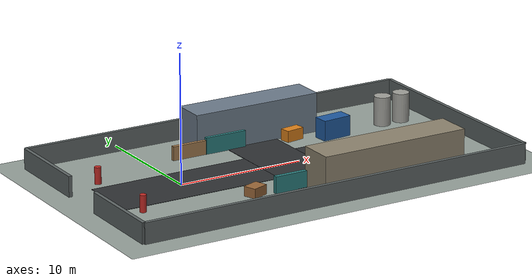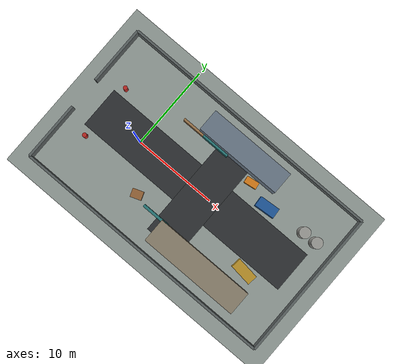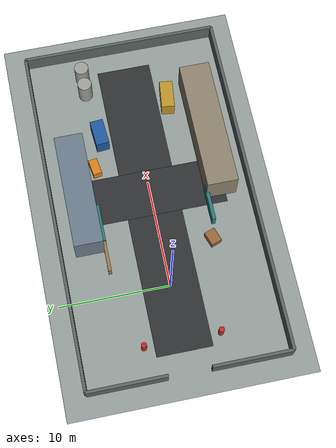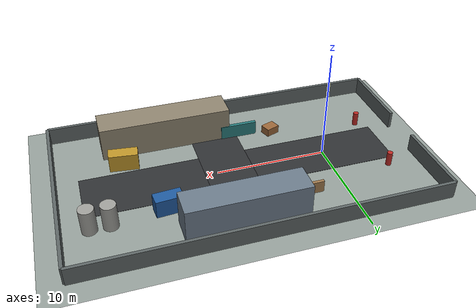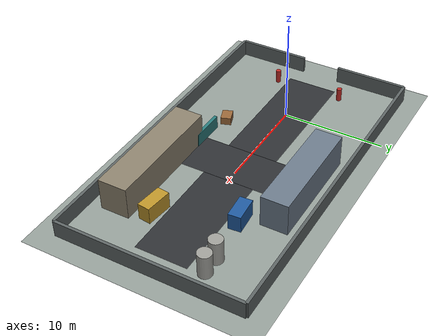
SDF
<?xml version="1.0"?>
<sdf version="1.9">
  <world name="lingtu_gazebo_industrial_park">
    <plugin filename="gz-sim-physics-system" name="gz::sim::systems::Physics"/>
    <plugin filename="gz-sim-user-commands-system" name="gz::sim::systems::UserCommands"/>
    <plugin filename="gz-sim-scene-broadcaster-system" name="gz::sim::systems::SceneBroadcaster"/>
    <plugin filename="gz-sim-sensors-system" name="gz::sim::systems::Sensors">
      <render_engine>ogre2</render_engine>
    </plugin>

    <gravity>0 0 -9.81</gravity>
    <magnetic_field>6e-06 2.3e-05 -4.2e-05</magnetic_field>
    <atmosphere type="adiabatic"/>

    <light name="sun" type="directional">
      <cast_shadows>true</cast_shadows>
      <pose>6 -4 14 0 0 0</pose>
      <diffuse>0.86 0.84 0.80 1</diffuse>
      <specular>0.25 0.25 0.25 1</specular>
      <direction>-0.35 0.25 -0.90</direction>
    </light>

    <model name="industrial_ground_plane">
      <static>true</static>
      <pose>8 0 0 0 0 0</pose>
      <link name="link">
        <collision name="collision">
          <geometry>
            <plane>
              <normal>0 0 1</normal>
              <size>36 22</size>
            </plane>
          </geometry>
          <surface>
            <friction>
              <ode>
                <mu>1.25</mu>
                <mu2>1.25</mu2>
              </ode>
            </friction>
          </surface>
        </collision>
        <visual name="visual">
          <geometry>
            <plane>
              <normal>0 0 1</normal>
              <size>36 22</size>
            </plane>
          </geometry>
          <material>
            <ambient>0.45 0.48 0.47 1</ambient>
            <diffuse>0.58 0.62 0.60 1</diffuse>
          </material>
        </visual>
      </link>
    </model>

    <model name="main_asphalt_road">
      <static>true</static>
      <pose>8 0 0.015 0 0 0</pose>
      <link name="link">
        <visual name="visual">
          <geometry><box><size>28 5.0 0.03</size></box></geometry>
          <material><ambient>0.10 0.11 0.12 1</ambient><diffuse>0.18 0.19 0.20 1</diffuse></material>
        </visual>
      </link>
    </model>

    <model name="cross_asphalt_road">
      <static>true</static>
      <pose>9 0 0.018 0 0 0</pose>
      <link name="link">
        <visual name="visual">
          <geometry><box><size>4.4 13.5 0.03</size></box></geometry>
          <material><ambient>0.10 0.11 0.12 1</ambient><diffuse>0.18 0.19 0.20 1</diffuse></material>
        </visual>
      </link>
    </model>

    <model name="perimeter_fence_north">
      <static>true</static>
      <pose>8 9 0.8 0 0 0</pose>
      <link name="link">
        <collision name="collision"><geometry><box><size>32 0.28 1.6</size></box></geometry></collision>
        <visual name="visual"><geometry><box><size>32 0.28 1.6</size></box></geometry><material><ambient>0.18 0.20 0.20 1</ambient><diffuse>0.36 0.39 0.39 1</diffuse></material></visual>
      </link>
    </model>

    <model name="perimeter_fence_south">
      <static>true</static>
      <pose>8 -9 0.8 0 0 0</pose>
      <link name="link">
        <collision name="collision"><geometry><box><size>32 0.28 1.6</size></box></geometry></collision>
        <visual name="visual"><geometry><box><size>32 0.28 1.6</size></box></geometry><material><ambient>0.18 0.20 0.20 1</ambient><diffuse>0.36 0.39 0.39 1</diffuse></material></visual>
      </link>
    </model>

    <model name="perimeter_fence_east">
      <static>true</static>
      <pose>24 0 0.8 0 0 0</pose>
      <link name="link">
        <collision name="collision"><geometry><box><size>0.28 18 1.6</size></box></geometry></collision>
        <visual name="visual"><geometry><box><size>0.28 18 1.6</size></box></geometry><material><ambient>0.18 0.20 0.20 1</ambient><diffuse>0.36 0.39 0.39 1</diffuse></material></visual>
      </link>
    </model>

    <model name="perimeter_gate_west_left">
      <static>true</static>
      <pose>-8 5.45 0.8 0 0 0</pose>
      <link name="link">
        <collision name="collision"><geometry><box><size>0.28 7.1 1.6</size></box></geometry></collision>
        <visual name="visual"><geometry><box><size>0.28 7.1 1.6</size></box></geometry><material><ambient>0.18 0.20 0.20 1</ambient><diffuse>0.36 0.39 0.39 1</diffuse></material></visual>
      </link>
    </model>

    <model name="perimeter_gate_west_right">
      <static>true</static>
      <pose>-8 -5.45 0.8 0 0 0</pose>
      <link name="link">
        <collision name="collision"><geometry><box><size>0.28 7.1 1.6</size></box></geometry></collision>
        <visual name="visual"><geometry><box><size>0.28 7.1 1.6</size></box></geometry><material><ambient>0.18 0.20 0.20 1</ambient><diffuse>0.36 0.39 0.39 1</diffuse></material></visual>
      </link>
    </model>

    <model name="warehouse_north_hall">
      <static>true</static>
      <pose>9.5 6.4 1.55 0 0 0</pose>
      <link name="link">
        <collision name="collision"><geometry><box><size>10.5 2.6 3.1</size></box></geometry></collision>
        <visual name="visual"><geometry><box><size>10.5 2.6 3.1</size></box></geometry><material><ambient>0.25 0.29 0.33 1</ambient><diffuse>0.42 0.48 0.54 1</diffuse></material></visual>
      </link>
    </model>

    <model name="factory_south_hall">
      <static>true</static>
      <pose>13.5 -6.3 1.55 0 0 0</pose>
      <link name="link">
        <collision name="collision"><geometry><box><size>12.0 2.8 3.1</size></box></geometry></collision>
        <visual name="visual"><geometry><box><size>12.0 2.8 3.1</size></box></geometry><material><ambient>0.30 0.28 0.24 1</ambient><diffuse>0.55 0.51 0.43 1</diffuse></material></visual>
      </link>
    </model>

    <model name="loading_dock_wall">
      <static>true</static>
      <pose>4.2 5.0 0.55 0 0 0</pose>
      <link name="link">
        <collision name="collision"><geometry><box><size>4.2 0.28 1.1</size></box></geometry></collision>
        <visual name="visual"><geometry><box><size>4.2 0.28 1.1</size></box></geometry><material><ambient>0.32 0.25 0.18 1</ambient><diffuse>0.62 0.47 0.30 1</diffuse></material></visual>
      </link>
    </model>

    <model name="container_stack_blue">
      <static>true</static>
      <pose>15.2 3.5 0.8 0 0 0.08</pose>
      <link name="link">
        <collision name="collision"><geometry><box><size>2.4 1.2 1.6</size></box></geometry></collision>
        <visual name="visual"><geometry><box><size>2.4 1.2 1.6</size></box></geometry><material><ambient>0.08 0.18 0.30 1</ambient><diffuse>0.12 0.35 0.62 1</diffuse></material></visual>
      </link>
    </model>

    <model name="container_stack_yellow">
      <static>true</static>
      <pose>17.8 -3.4 0.8 0 0 -0.12</pose>
      <link name="link">
        <collision name="collision"><geometry><box><size>2.6 1.2 1.6</size></box></geometry></collision>
        <visual name="visual"><geometry><box><size>2.6 1.2 1.6</size></box></geometry><material><ambient>0.36 0.29 0.08 1</ambient><diffuse>0.74 0.58 0.16 1</diffuse></material></visual>
      </link>
    </model>

    <model name="pipe_rack_left">
      <static>true</static>
      <pose>6.6 -5.0 0.65 0 0 0</pose>
      <link name="link">
        <collision name="collision"><geometry><box><size>3.4 0.32 1.3</size></box></geometry></collision>
        <visual name="visual"><geometry><box><size>3.4 0.32 1.3</size></box></geometry><material><ambient>0.10 0.25 0.25 1</ambient><diffuse>0.16 0.48 0.48 1</diffuse></material></visual>
      </link>
    </model>

    <model name="pipe_rack_right">
      <static>true</static>
      <pose>6.6 5.0 0.65 0 0 0</pose>
      <link name="link">
        <collision name="collision"><geometry><box><size>3.4 0.32 1.3</size></box></geometry></collision>
        <visual name="visual"><geometry><box><size>3.4 0.32 1.3</size></box></geometry><material><ambient>0.10 0.25 0.25 1</ambient><diffuse>0.16 0.48 0.48 1</diffuse></material></visual>
      </link>
    </model>

    <model name="pallet_cluster">
      <static>true</static>
      <pose>3.5 -4.6 0.38 0 0 0.35</pose>
      <link name="link">
        <collision name="collision"><geometry><box><size>1.3 1.0 0.75</size></box></geometry></collision>
        <visual name="visual"><geometry><box><size>1.3 1.0 0.75</size></box></geometry><material><ambient>0.32 0.21 0.12 1</ambient><diffuse>0.60 0.40 0.22 1</diffuse></material></visual>
      </link>
    </model>

    <model name="forklift_silhouette">
      <static>true</static>
      <pose>12.2 4.5 0.45 0 0 0.15</pose>
      <link name="link">
        <collision name="collision"><geometry><box><size>1.5 0.8 0.9</size></box></geometry></collision>
        <visual name="visual"><geometry><box><size>1.5 0.8 0.9</size></box></geometry><material><ambient>0.42 0.24 0.06 1</ambient><diffuse>0.86 0.50 0.10 1</diffuse></material></visual>
      </link>
    </model>

    <model name="tank_silo_a">
      <static>true</static>
      <pose>20.0 4.0 1.15 0 0 0</pose>
      <link name="link">
        <collision name="collision"><geometry><cylinder><radius>0.65</radius><length>2.3</length></cylinder></geometry></collision>
        <visual name="visual"><geometry><cylinder><radius>0.65</radius><length>2.3</length></cylinder></geometry><material><ambient>0.30 0.30 0.30 1</ambient><diffuse>0.62 0.62 0.60 1</diffuse></material></visual>
      </link>
    </model>

    <model name="tank_silo_b">
      <static>true</static>
      <pose>21.7 4.0 1.15 0 0 0</pose>
      <link name="link">
        <collision name="collision"><geometry><cylinder><radius>0.65</radius><length>2.3</length></cylinder></geometry></collision>
        <visual name="visual"><geometry><cylinder><radius>0.65</radius><length>2.3</length></cylinder></geometry><material><ambient>0.30 0.30 0.30 1</ambient><diffuse>0.62 0.62 0.60 1</diffuse></material></visual>
      </link>
    </model>

    <model name="guard_post_left">
      <static>true</static>
      <pose>-5.0 3.4 0.65 0 0 0</pose>
      <link name="link">
        <collision name="collision"><geometry><cylinder><radius>0.25</radius><length>1.3</length></cylinder></geometry></collision>
        <visual name="visual"><geometry><cylinder><radius>0.25</radius><length>1.3</length></cylinder></geometry><material><ambient>0.35 0.08 0.08 1</ambient><diffuse>0.74 0.16 0.14 1</diffuse></material></visual>
      </link>
    </model>

    <model name="guard_post_right">
      <static>true</static>
      <pose>-5.0 -3.4 0.65 0 0 0</pose>
      <link name="link">
        <collision name="collision"><geometry><cylinder><radius>0.25</radius><length>1.3</length></cylinder></geometry></collision>
        <visual name="visual"><geometry><cylinder><radius>0.25</radius><length>1.3</length></cylinder></geometry><material><ambient>0.35 0.08 0.08 1</ambient><diffuse>0.74 0.16 0.14 1</diffuse></material></visual>
      </link>
    </model>

    <physics name="lingtu_industrial_physics" type="ode">
      <max_step_size>0.005</max_step_size>
      <real_time_factor>1.0</real_time_factor>
      <real_time_update_rate>200</real_time_update_rate>
    </physics>
  </world>
</sdf>
